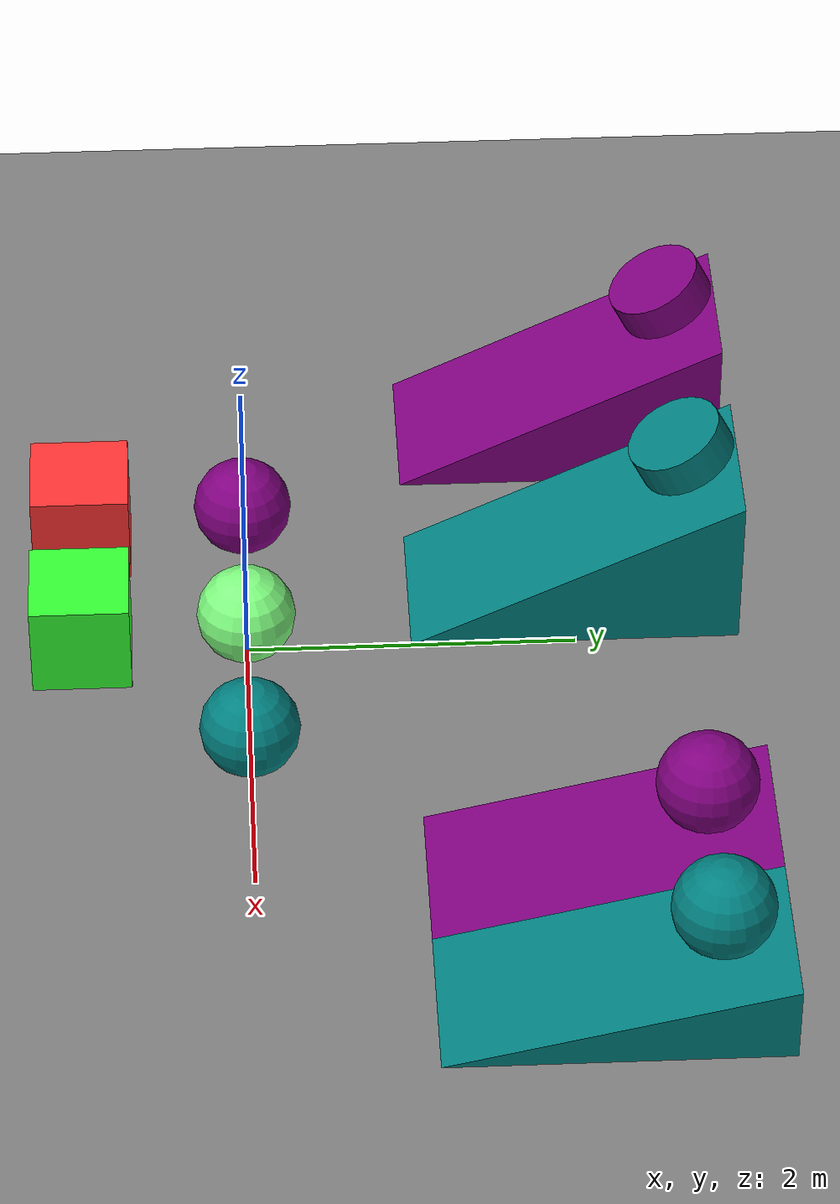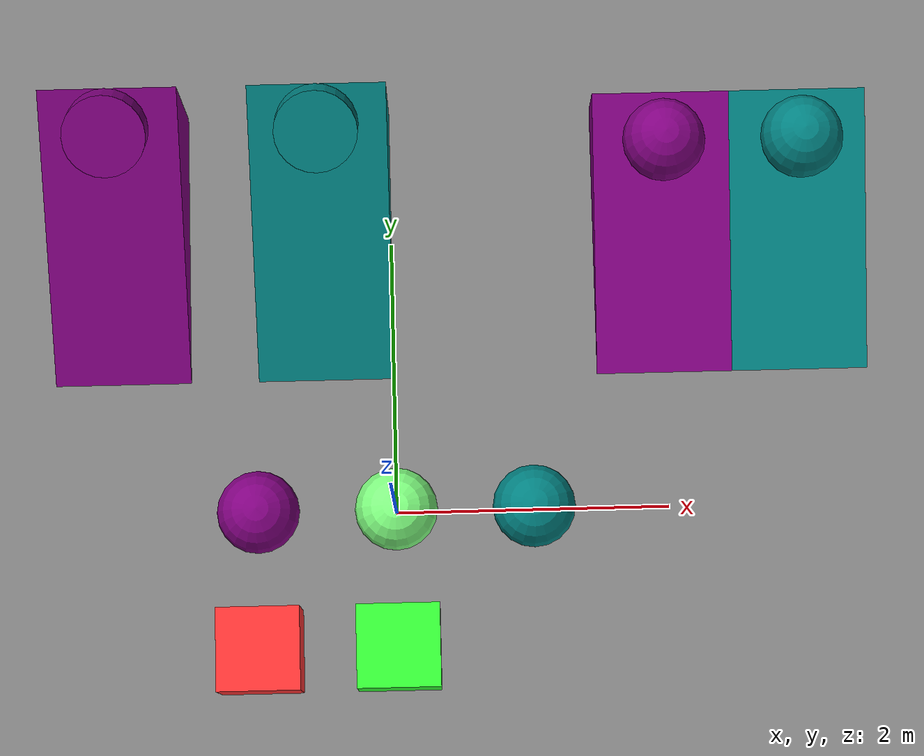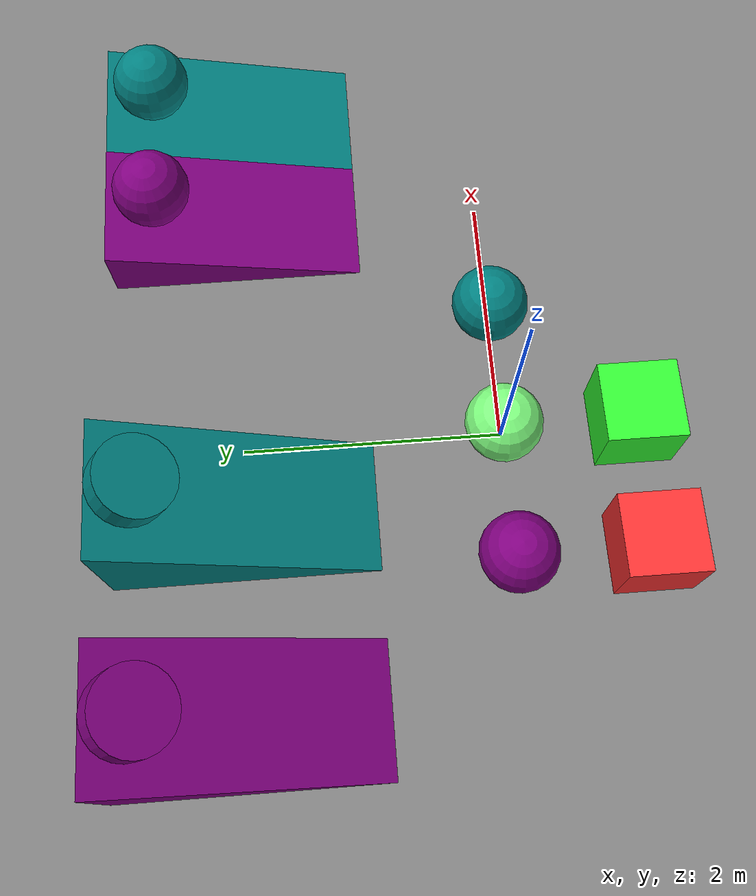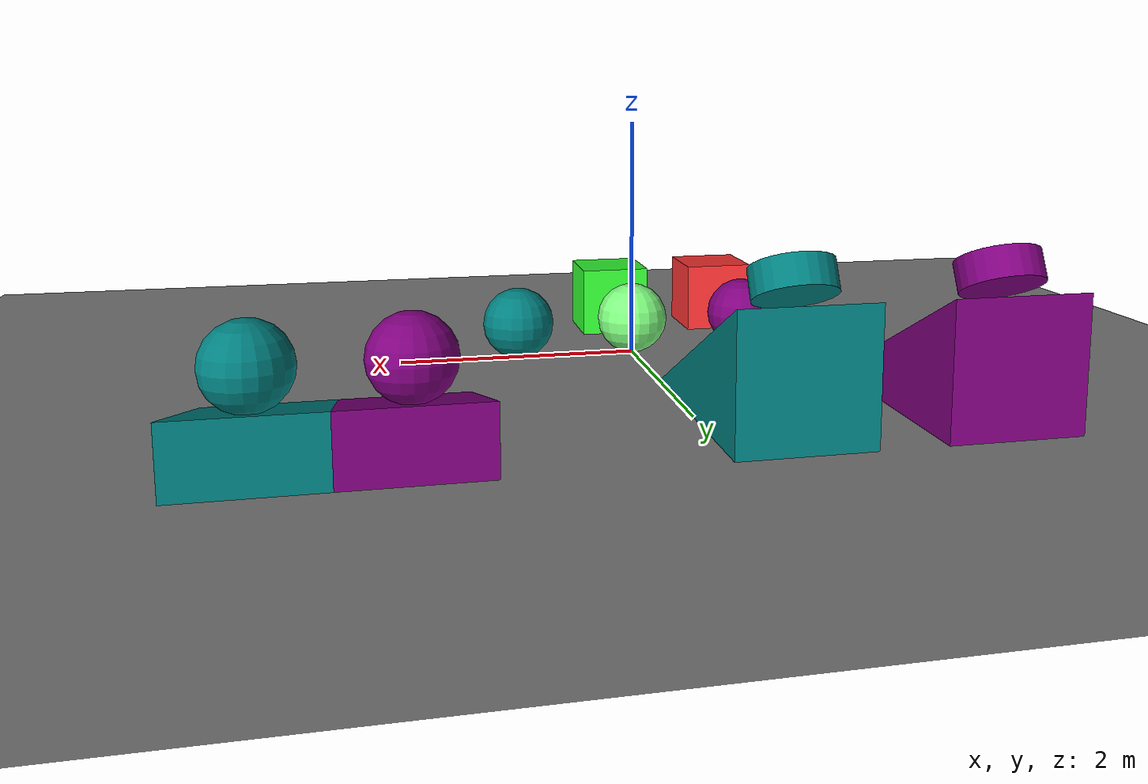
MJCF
<?xml version="1.0" encoding="utf-8"?>
<mujoco model="inverted_pendulum">
    <compiler angle="radian"/>
    <option timestep="0.002" gravity="0 0 -9.81" wind="0 0 0" integrator="implicitfast"
        cone="elliptic" impratio="1"/>

    <visual>
        <global realtime="1" />
        <quality shadowsize="16384" numslices="28" offsamples="4" />
        <headlight diffuse="1 1 1" specular="0.5 0.5 0.5" active="1" />
        <rgba fog="1 0 0 1" haze="1 1 1 1" />
    </visual>

    <asset>
        <texture type="skybox" file="../asset/desert.png"
            gridsize="3 4" gridlayout=".U..LFRB.D.." />
        <texture name="plane" type="2d" builtin="checker" rgb1=".1 .1 .1" rgb2=".9 .9 .9"
            width="512" height="512" mark="cross" markrgb=".8 .8 .8" />
        <material name="plane" reflectance="0.3" texture="plane" texrepeat="1 1" texuniform="true" />
        <texture name="y_and_c" type="cube" builtin="checker" rgb1="1 1 0" rgb2="0 1 1"
            width="512" height="512" />
        <material name="y_and_c" reflectance="0.3" texture="y_and_c" texrepeat="1 1"
            texuniform="true" />
        <texture name="r_and_b" type="cube" builtin="checker" rgb1="1 0 0" rgb2="0 0 1"
            width="512" height="512" />
        <material name="r_and_b" reflectance="0.3" texture="r_and_b" texrepeat="1 1"
            texuniform="true" />
        <texture name="g_and_b" type="cube" builtin="checker" rgb1="0 1 0" rgb2="0 0 1"
            width="512" height="512" />
        <material name="g_and_b" reflectance="0.3" texture="g_and_b" texrepeat="1 1"
            texuniform="true" />

        <texture name="r2b" type="cube" builtin="gradient" rgb1="1 0 0" rgb2="0 0 1"
            width="512" height="512" />
        <material name="r2b" reflectance="0.3" texture="r2b" texrepeat="1 1"
            texuniform="true" />
        <texture name="g2b" type="cube" builtin="gradient" rgb1="0 1 0" rgb2="0 0 1"
            width="512" height="512" />
        <material name="g2b" reflectance="0.3" texture="g2b" texrepeat="1 1" texuniform="true" />
        <mesh name="slope1"
            vertex="0 0 0
                1 0 0
                1 2 0
                0 2 0
                1 2 1
                0 2 1" />
        <mesh name="slope2"
            vertex="0 0 0
                    1 0 0
                    1 2 0
                    0 2 0
                    1 2 0.5
                    0 2 0.5" />
    </asset>

    <worldbody>
        <geom name="floor" pos="0 0 0" size="10 10 .1" type="plane" material="plane"
            condim="3" friction="1 0.005 0.0001" priority="-1" />
        <light directional="true" ambient=".3 .3 .3" pos="30 30 30" dir="0 -2 -1"
            diffuse=".5 .5 .5" specular=".5 .5 .5" />

        <body pos="-1 -1 0.3">
            <freejoint />
            <geom type="box" mass="1" size="0.3 0.3 0.3" condim="1" friction="1 0.005 0.0001"
                rgba="1 0.2 0.2 1" />
        </body>

        <body pos="0 -1 0.3">
            <freejoint />
            <geom type="box" mass="1" size="0.3 0.3 0.3" condim="3" friction="1 0.005 0.0001"
                rgba="0.2 1 0.2 1" />
        </body>

        <body pos="-1 0 0.3">
            <freejoint />
            <geom type="sphere" mass="1" size="0.3" condim="3" friction="1 0.01 0.01"
                material="r_and_b" />
        </body>

        <body pos="0 0 0.3">
            <freejoint />
            <geom type="sphere" mass="1" size="0.3" condim="4" friction="1 0.01 0.01"
                material="y_and_c" />
        </body>

        <body pos="1 0 0.3">
            <freejoint />
            <geom type="sphere" mass="1" size="0.3" condim="6" friction="1 0.01 0.01"
                material="g_and_b" />
        </body>

        <!-- 斜坡 -->
        <body pos="-2.5 1 0">
            <geom type="mesh" mesh="slope1" priority="-1" material="r2b" />
        </body>
        <body pos="-2 2.6 1.2">
            <freejoint />
            <geom type="cylinder" mass="1" size="0.3" condim="1" fromto="0 0 0 0 0.1 -0.2"
                friction="1 0.005 0.01" material="r2b" />
        </body>

        <body pos="-1 1 0">
            <geom type="mesh" mesh="slope1" priority="-1" material="g2b" />
        </body>
        <body pos="-0.5 2.6 1.2">
            <freejoint />
            <geom type="cylinder" mass="1" size="0.3" condim="3" fromto="0 0 0 0 0.1 -0.2"
                friction="1 0.005 0.01" material="g2b" />
        </body>

        <body pos="1.5 1 0">
            <geom type="mesh" mesh="slope2" priority="-1" material="r2b" />
        </body>
        <body pos="2 2.6 0.7">
            <freejoint />
            <geom type="sphere" mass="1" size="0.3" condim="4" friction="1 0.005 0.01"
                material="r2b" />
        </body>

        <body pos="2.5 1 0">
            <geom type="mesh" mesh="slope2" priority="-1" material="g2b" />
        </body>
        <body pos="3 2.6 0.7">
            <freejoint />
            <geom type="sphere" mass="1" size="0.3" condim="6" friction="1 0.005 0.05"
                material="g2b" />
        </body>

    </worldbody>
</mujoco>
